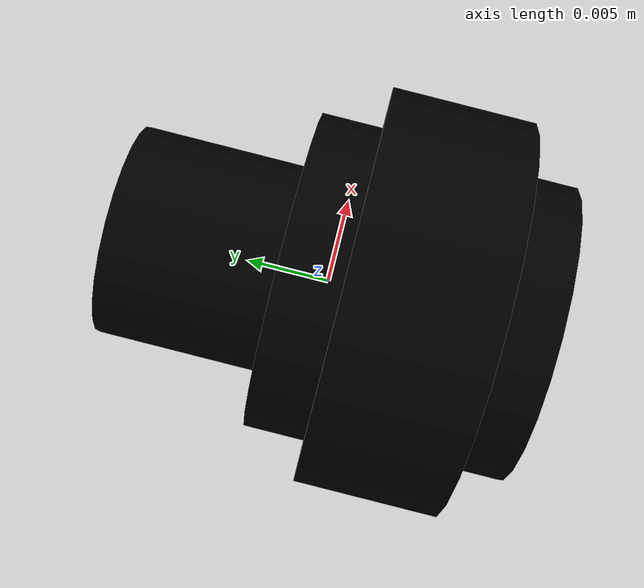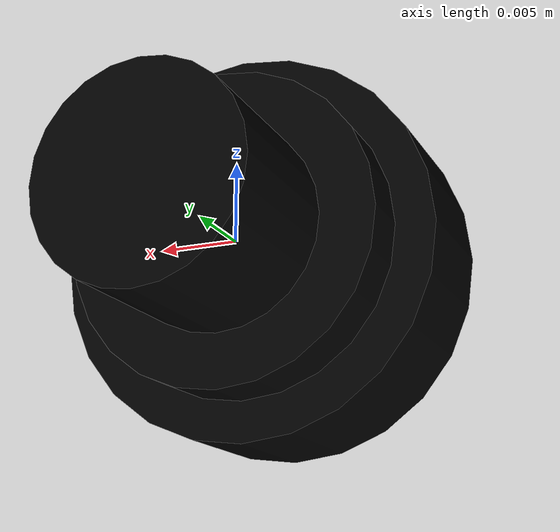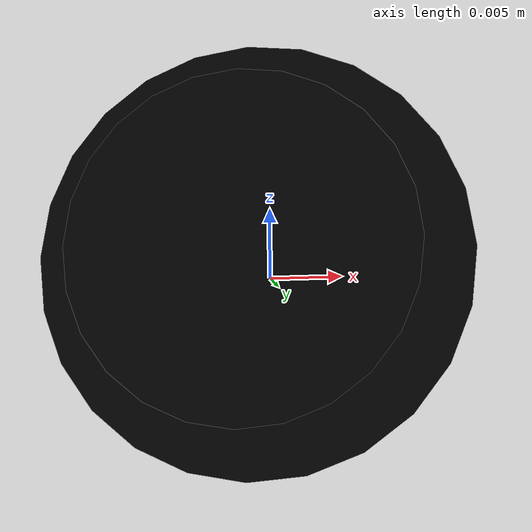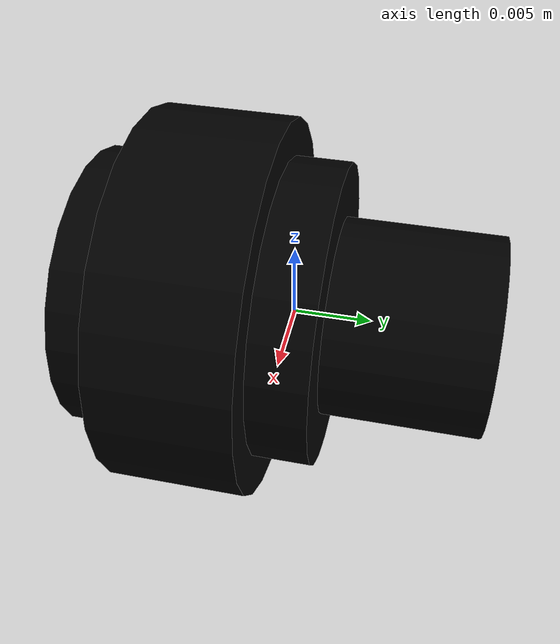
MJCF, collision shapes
<?xml version="1.0" ?>
<mujoco model="model">
    <compiler angle="radian"/>
    <asset>
        <mesh file="visuals/CabinetHandle016.obj" name="mesh"/>
        <texture file="visuals/T_BC001.png" name="tex" type="2d"/>
        <material name="mat" rgba="1 1 1 1.0" texture="tex" shininess="0.5" specular="0.7"/>
    </asset>
    <default>
        <default class="visual">
            <geom conaffinity="0" contype="0" group="1" type="mesh"/>
        </default>
        <default class="collision">
            <geom group="0" rgba="0 0 0 0"/>
        </default>
        <default class="spawn">
            <geom group="0" rgba="0 0 0 0" contype="0" conaffinity="0"/>
            <site group="0" rgba="0 0 0 0"/>
        </default>
    </default>
    <worldbody>
        <body>
            <body name="object">
                <geom mesh="mesh" type="mesh" solimp="0.998 0.998 0.001" solref="0.001 1" density="100" friction="0.95 0.3 0.1" class="visual" material="mat"/>
                <geom class="collision" type="cylinder" pos="1.96356004560867e-20 0.0062785944901406765 0.00010406870569568127" size="0.006393986754119396 0.006393986754119396" quat="0.5 0.5 -0.4999999701976776 0.5" name="handle_connector"/>
                <geom class="collision" type="cylinder" pos="-1.2924697071141057e-26 -0.005217422731220722 8.933019125834107e-05" size="0.012200279161334038 0.004278536420315504" quat="0.5 0.5 -0.4999999701976776 0.5"/>
                <geom class="collision" type="cylinder" pos="8.181488342397143e-21 -0.009675813838839531 5.248398520052433e-05" size="0.009160645306110382 0.003212562296539545" quat="0.5 0.5 -0.4999999701976776 0.5"/>
                <geom class="collision" type="cylinder" pos="-1.63630154588855e-20 -0.0007221857085824013 0.00016302260337397456" size="0.00974538829177618 0.0034176267217844725" quat="0.5 0.5 -0.4999999701976776 0.5"/>
            </body>
        </body>
    </worldbody>
    <actuator/>
</mujoco>
